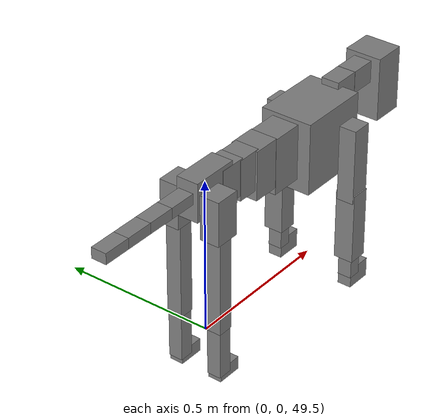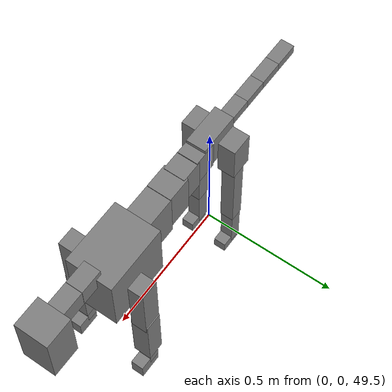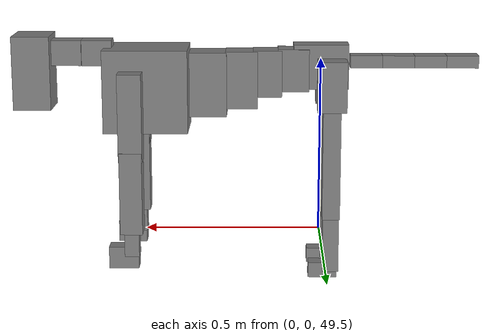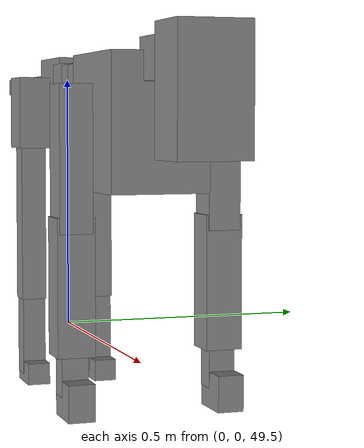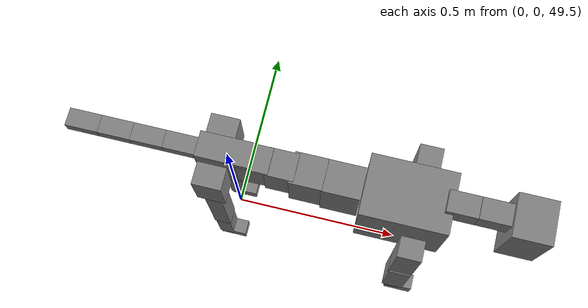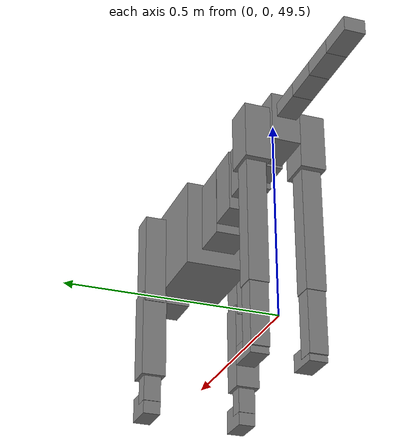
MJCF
<mujoco model="dog">

    <default>
        <joint armature="0.02" stiffness="1" damping="0.2" limited="true"/>
        <geom condim="3" friction="1 0.05 0.05" margin="0.01"/>
        <motor ctrllimited="true" ctrlrange="-1.0 1.0" forcelimited="true" gear="50"/>
    </default>

    <compiler inertiafromgeom="true" angle="radian"/>

    <option timestep="0.016" iterations="50" tolerance="1e-10" solver="Newton" jacobian="dense" cone="pyramidal"/>

    <size nconmax="20000" njmax="60000" nstack="5000000"/>
    <visual>
        <map force="0.1" zfar="30"/>
        <rgba haze="0.15 0.25 0.35 1"/>
        <quality shadowsize="2048"/>
        <global offwidth="800" offheight="800"/>
    </visual>

    <asset>
        <texture type="skybox" builtin="gradient" rgb1="0.3 0.5 0.7" rgb2="0 0 0" width="512" height="512"/>
        <texture name="texplane" type="2d" builtin="checker" rgb1=".2 .3 .4" rgb2=".1 0.15 0.2" width="512" height="512"
                 mark="cross" markrgb=".8 .8 .8"/>
        <texture name="texgeom" type="cube" builtin="flat" mark="cross" width="127" height="1278" rgb1="0.8 0.6 0.4"
                 rgb2="0.8 0.6 0.4" markrgb="1 1 1" random="0.01"/>

        <material name="matplane" reflectance="0.3" texture="texplane" texrepeat="1 1" texuniform="true"/>
        <material name="matgeom" texture="texgeom" texuniform="true" rgba="0.8 0.6 .4 1"/>
    </asset>

    <worldbody>
        <geom name="floor" pos="0 0 0" size="0 0 .25" type="plane" material="matplane" condim="3"/>

        <light directional="false" diffuse=".2 .2 .2" specular="0 0 0" pos="0 0 5" dir="0 0 -1" castshadow="false"/>
        <light mode="targetbodycom" target="torso" directional="false" diffuse=".8 .8 .8" specular="0.3 0.3 0.3"
               pos="0 0 4.0" dir="0 0 -1"/>

        <body name="root" pos="0 0 50">
            <freejoint name="root_1"/>
            <geom type="box" pos="0 0 -0.02" size="0.0774  0.0358  0.063" density="2030"/>

            <body name="spine1" pos="0.054 0 0">
                <joint name="spine1_y" axis="0 1 0" range="0 0.7" limited="true"/>
                <geom type="box" pos="0.02375 0 -0.03" size="0.04375  0.0375  0.05985" density="2030"/>

                <body name="spine2" pos="0.0612 0 0">
                    <joint name="spine2_y" axis="0 1 0" range="-0.15 0.15" limited="true"/>
                    <geom type="box" pos="0.03555  0  -0.04" size="0.04055  0.039  0.06615" density="2030"/>

                    <body name="spine3" pos="0.0730 0 0">
                        <joint name="spine3_y" axis="0 1 0" range="-0.15 0.15" limited="true"/>
                        <geom type="box" pos="0.03555  0  -0.057" size="0.04555  0.0445  0.081" density="2030"/>

                        <body name="spine4" pos="0.0780 0 0">
                            <joint name="spine4_y" axis="0 1 0" range="-0.15 0.15" limited="true"/>
                            <geom type="box" pos="0.05265  0  -0.07" size="0.05265  0.045  0.09135" density="2030"/>

                            <body name="torso" pos="0.1082 0 0">
                                <joint name="torso_y" axis="0 1 0" range="-0.15 0.15" limited="true"/>
                                <geom type="box" pos="0.11925  0  -0.085" size="0.11925  0.085  0.11745"
                                      density="2030"/>

                                <body name="neck1" pos="0.2160  0   0.0180">
                                    <joint name="neck1_y" axis="0 1 0" range="-1.2  -1" limited="true"/>
                                    <geom type="box" pos="0.0423  0  0" size="0.0423  0.03  0.036" density="2325"/>

                                    <body name="neck2" pos="0.0853  0  0">
                                        <joint name="neck2_y" axis="0 1 0" range="0.1  0" limited="true"/>
                                        <geom type="box" pos="0.0423  0  0" size="0.0423  0.03  0.036" density="2325"/>

                                        <body name="head" pos="0.0853  0  0">
                                            <joint name="head_y" axis="0 1 0" range="-0.3  -0.2" limited="true"/>
                                            <geom type="box" pos="0.0531  0  -0.055" size="0.0531  0.06  0.1044"
                                                  density="4030"/>

                                        </body>
                                    </body>
                                </body>

                                <body name="front_shoulder" pos="0.156  0   -0.0480">
                                    <joint name="front_shoulder_y" axis="0 1 0" range="-1 1.5" limited="true"/>
                                    <geom type="box" pos="0 0.13 -0.0970" size="0.0331  0.0283  0.1236" density="1158"/>
                                    <geom type="box" pos="0 -0.13 -0.0970" size="0.0331  0.0283  0.1236"
                                          density="1158"/>

                                    <body name="front_elbow" pos="0  0  -0.1940">
                                        <joint name="front_elbow_y" axis="0 1 0" range="-2 0" limited="true"/>
                                        <geom type="box" pos="0 0.13 -0.1160" size="0.0313  0.0320  0.1160"
                                              density="1081"/>
                                        <geom type="box" pos="0 -0.13 -0.1160" size="0.0313  0.0320  0.1160"
                                              density="1081"/>

                                        <body name="front_wrist" pos="0  0  -0.2319">
                                            <joint name="front_wrist_y" axis="0 1 0" range="-0.2 0" limited="true"/>
                                            <geom type="box" pos="0 0.13 -0.0269" size="0.0205  0.0228  0.0400"
                                                  density="1664"/>
                                            <geom type="box" pos="0 -0.13 -0.0269" size="0.0205  0.0228  0.0400"
                                                  density="1664"/>

                                            <body name="front_finger_end" pos="0  0  -0.0537">
                                                <joint name="front_finger_y" axis="0 1 0" range="-0.4 1"
                                                       limited="true"/>
                                                <geom type="box" pos="0.0227  0.13  -0.0163"
                                                      size="0.0416  0.0227  0.0313" density="1515"/>
                                                <geom type="box" pos="0.0227  -0.13  -0.0163"
                                                      size="0.0416  0.0227  0.0313" density="1515"/>

                                            </body>

                                        </body>
                                    </body>
                                </body>

                            </body>
                        </body>
                    </body>
                </body>
            </body>

            <body name="back_hip" pos="-0.03 0 -0.018">
                <joint name="back_hip_y" axis="0 1 0" range="-1.5 0.3" limited="true"/>
                <geom type="box" pos="0 0.07 -0.0487" size="0.0407  0.0319  0.0715" density="1154"/>
                <geom type="box" pos="0 -0.07 -0.0487" size="0.0407  0.0319  0.0715" density="1154"/>

                <body name="back_knee" pos="0  0  -0.0975">
                    <joint name="back_knee_y" axis="0 1 0" range="0 2.8" limited="true"/>
                    <geom type="box" pos="0 0.07 -0.1586" size="0.0251  0.0248  0.1742" density="1227"/>
                    <geom type="box" pos="0 -0.07 -0.1586" size="0.0251  0.0248  0.1742" density="1227"/>

                    <body name="back_ankle" pos="0  0  -0.3172">
                        <joint name="back_ankle_y" axis="0 1 0" range="-2.2 0" limited="true"/>
                        <geom type="box" pos="0 0.07 -0.0793" size="0.0229  0.0229  0.0905" density="1284"/>
                        <geom type="box" pos="0 -0.07 -0.0793" size="0.0229  0.0229  0.0905" density="1284"/>

                        <body name="back_toe_end" pos="0  0  -0.1585">
                            <joint name="back_toe_y" axis="0 1 0" range="-0.4 1" limited="true"/>
                            <geom type="box" pos="0.0223  0.07  -0.0064" size="0.0408  0.0223  0.0214" density="1515"/>
                            <geom type="box" pos="0.0223  -0.07  -0.0064" size="0.0408  0.0223  0.0214" density="1515"/>

                        </body>
                    </body>
                </body>
            </body>

            <body name="tail1" pos="-0.074 0 -0.006">
                <joint name="tail1_y" axis="0 1 0" range="-0.2 0.2" limited="true"/>
                <geom type="box" pos="-0.0536  0  0" size="0.045  0.025  0.0175" density="1587"/>

                <body name="tail2" pos="-0.09 0 0">
                    <joint name="tail2_y" axis="0 1 0" range="-0.2 0.2" limited="true"/>
                    <geom type="box" pos="-0.0536  0  0" size="0.045  0.025  0.0175" density="1587"/>

                    <body name="tail3" pos="-0.09 0 0">
                        <joint name="tail3_y" axis="0 1 0" range="-0.2 0.2" limited="true"/>
                        <geom type="box" pos="-0.0536  0  0" size="0.045  0.025  0.0175" density="1587"/>

                        <body name="tail4" pos="-0.09 0 0">
                            <joint name="tail4_y" axis="0 1 0" range="-0.2 0.2" limited="true"/>
                            <geom type="box" pos="-0.0536  0  0" size="0.045  0.025  0.0175" density="1587"/>

                        </body>
                    </body>
                </body>
            </body>
        </body>
    </worldbody>

    <actuator>
        <motor joint="spine1_y" forcerange="-150 150     "/>
        <motor joint="spine2_y" forcerange="-150 150     "/>
        <motor joint="spine3_y" forcerange="-150 150     "/>
        <motor joint="spine4_y" forcerange="-150 150     "/>
        <motor joint="torso_y" forcerange="-150 150     "/>
        <motor joint="neck1_y" forcerange="-100 100       "/>
        <motor joint="neck2_y" forcerange="-100 100       "/>
        <motor joint="head_y" forcerange="-150 150       "/>
        <motor joint="front_shoulder_y" forcerange="-133.09 155.53"/>
        <motor joint="front_elbow_y" forcerange="-140.28 192.64"/>
        <motor joint="front_wrist_y" forcerange="-130.25 52.05"/>
        <motor joint="front_finger_y" forcerange="-32.63 48.49"/>
        <motor joint="back_hip_y" forcerange="-299.52 326.32"/>
        <motor joint="back_knee_y" forcerange="-222.76 337.76"/>
        <motor joint="back_angle_y" forcerange="-57.70 208.43"/>
        <motor joint="back_toe_y" forcerange="-66.30 31.75"/>
        <motor joint="tail1_y" forcerange="-50 50     "/>
        <motor joint="tail2_y" forcerange="-50 50     "/>
        <motor joint="tail3_y" forcerange="-50 50     "/>
        <motor joint="tail4_y" forcerange="-50 50     "/>
    </actuator>
</mujoco>
